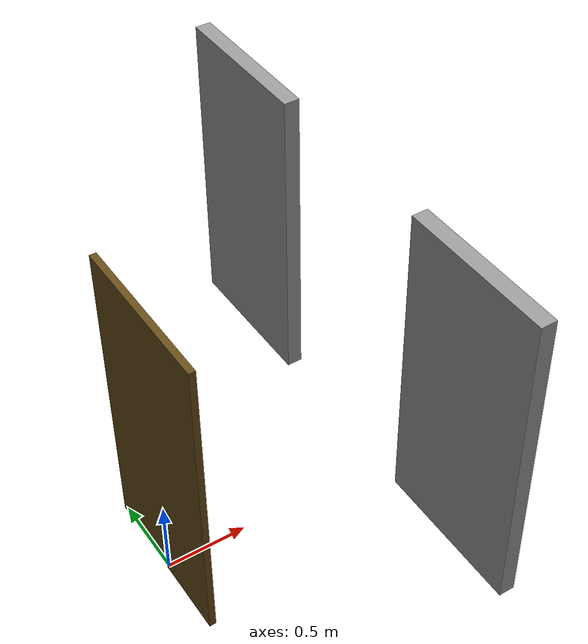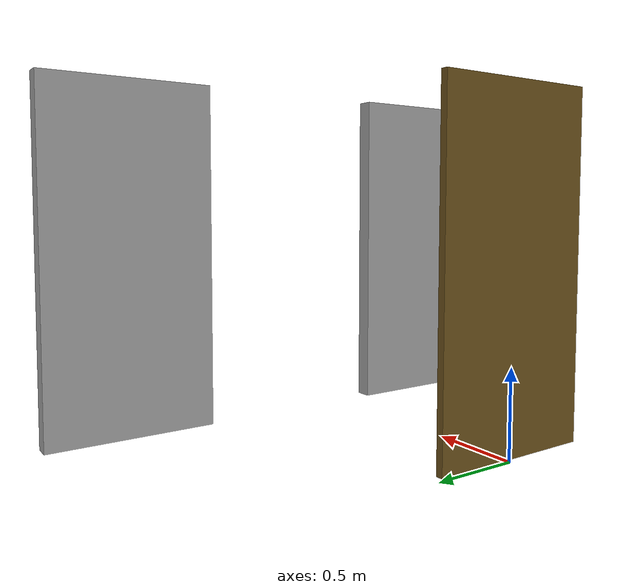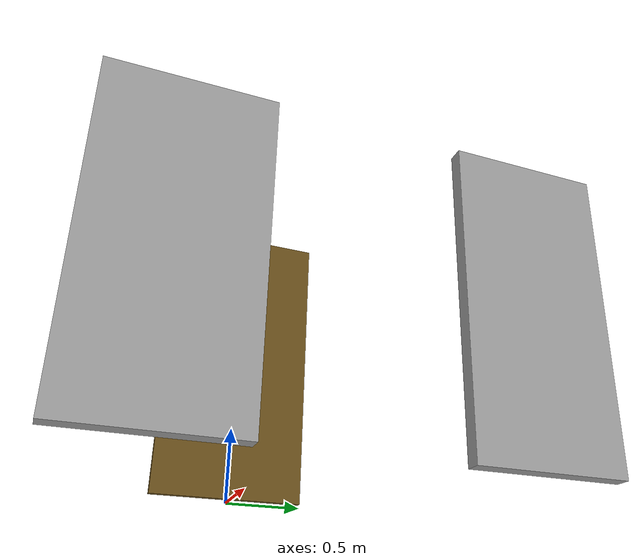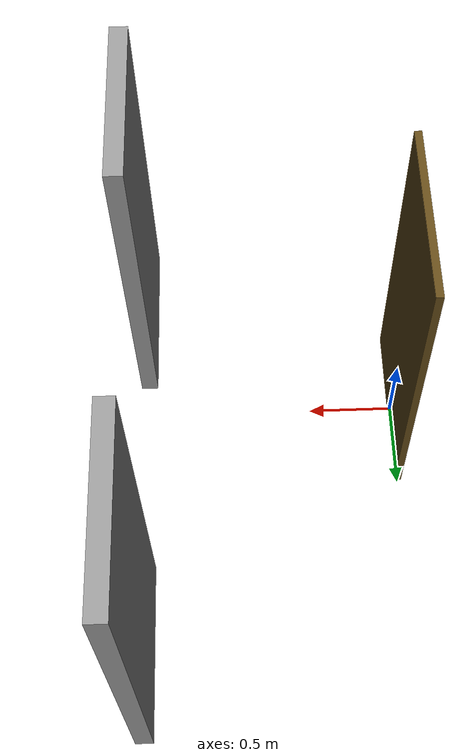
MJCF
<mujoco model="door_scene">
    <option gravity="0 0 -9.81" />
    <compiler angle="radian" />

    <worldbody>

        <body name="door" pos="1.5 0.4 0.0" quat="0 0 0 1">
            <freejoint name="door_root" />
            <geom name="wall_geom_right" type="box" size="0.05 0.5 1.025" pos="0 -1.1 1.025"
                rgba="0.6 0.6 0.6 1"
                contype="2" conaffinity="1"/>
            <geom name="wall_geom_left" type="box" size="0.05 0.5 1.025" pos="0 1.1 1.025"
                rgba="0.6 0.6 0.6 1"
                contype="2" conaffinity="1"/>
        </body>

        <body name="door_panel" pos="0 0.5 0">
            <freejoint name="door_panel_root" />
            <geom name="door_geom" type="box" size="0.02 0.5 0.975" pos="0 -0.5 1"
                rgba="0.4 0.3 0.1 1.0"
                contype="2" conaffinity="1" mass="20.0" />
        </body>
    </worldbody>

    <sensor>
    <!-- door sensors -->
    <framepos name="door_pos" objtype="xbody" objname="door" />
    <framequat name="door_quat" objtype="xbody" objname="door" />
    <framelinvel name="door_linvel" objtype="xbody" objname="door" />
    <frameangvel name="door_angvel" objtype="xbody" objname="door" />

    <!-- door panel sensors -->
    <framepos name="door_panel_pos" objtype="xbody" objname="door_panel"/>
    <framequat name="door_panel_quat" objtype="xbody" objname="door_panel"/>
    <framelinvel name="door_panel_linvel" objtype="xbody" objname="door_panel"/>
    <frameangvel name="door_panel_angvel" objtype="xbody" objname="door_panel"/>
    </sensor>

</mujoco>
